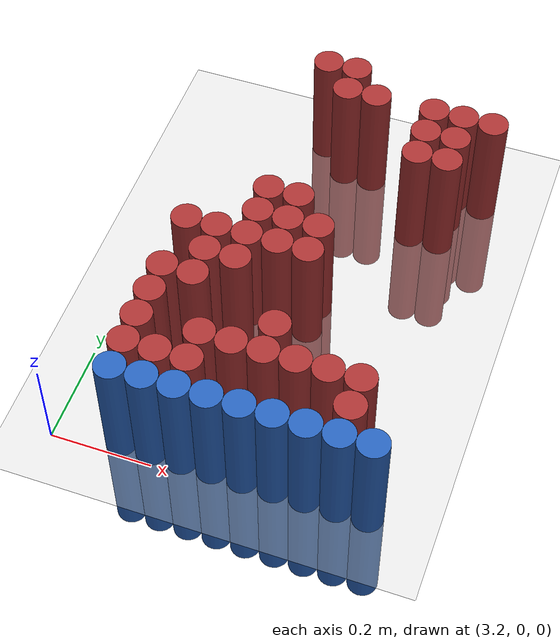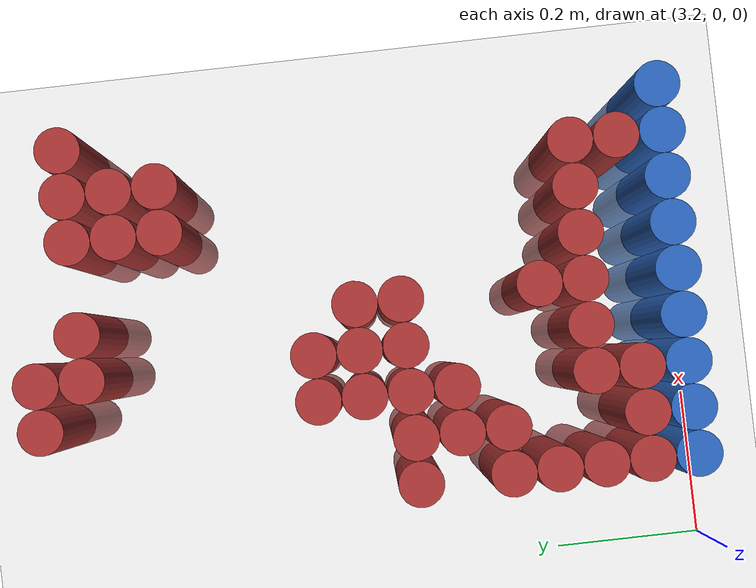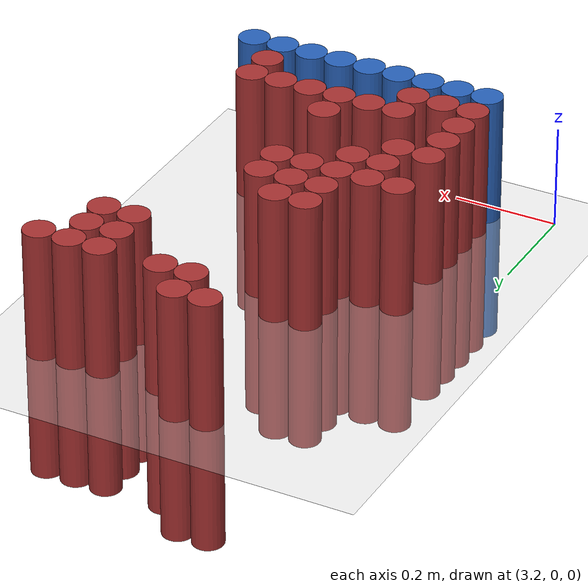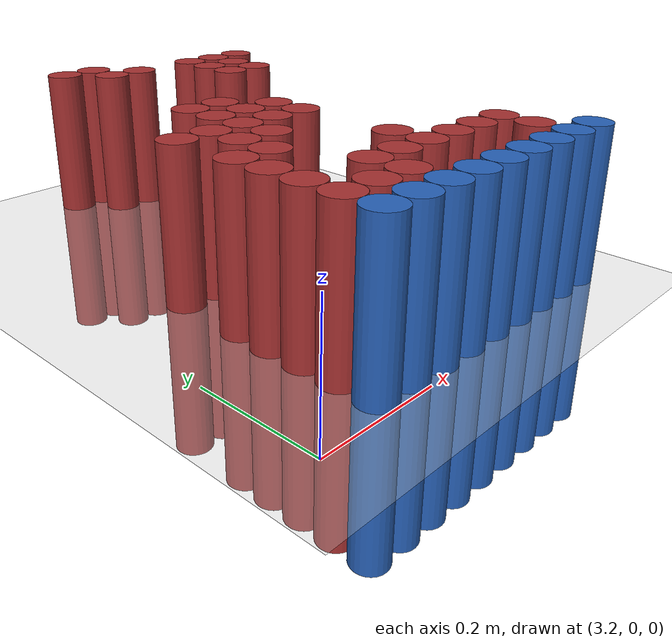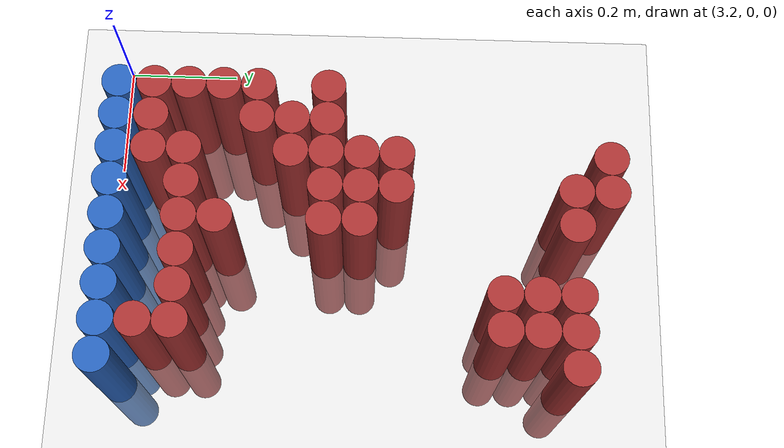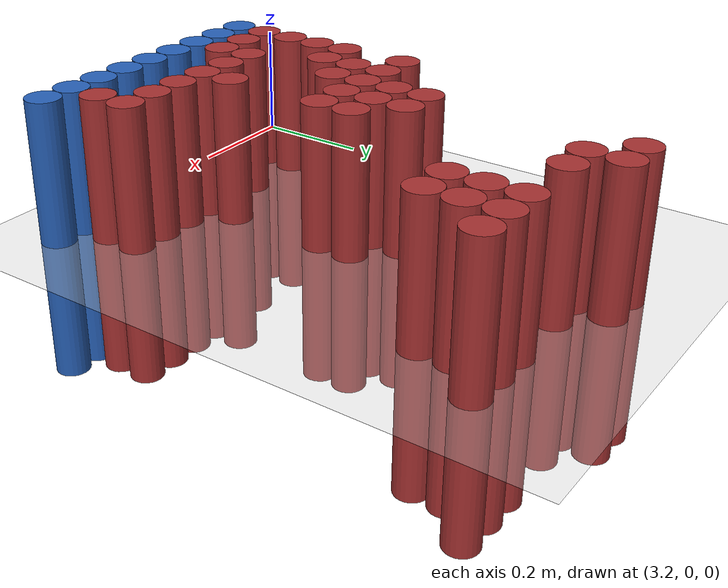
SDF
<sdf version="1.6">
 <world name="default">
  <model name="ground_plane">
   <static>1</static>
   <link name="link">
    <collision name="collision">
     <geometry><plane><normal>0 0 1</normal><size>100 100</size></plane></geometry>
     <surface><friction><ode><mu>100</mu><mu2>50</mu2></ode></friction></surface>
    </collision>
    <visual name="visual">
     <cast_shadows>0</cast_shadows>
     <geometry><plane><normal>0 0 1</normal><size>100 100</size></plane></geometry>
     <material>
      <script><uri>file://media/materials/scripts/gazebo.material</uri><name>Gazebo/Grey</name></script>
     </material>
    </visual>
   </link>
  </model>
  <model name="unit_cylinder_218">
   <static>1</static>
   <pose>3.450000 0.870000 0.000000 0.000000 0.000000 0.000000</pose>
   <link name="link">
    <inertial>
     <mass>1</mass>
     <inertia><ixx>0.145833</ixx><ixy>0</ixy><ixz>0</ixz><iyy>0.145833</iyy><iyz>0</iyz><izz>0.125</izz></inertia>
    </inertial>
    <collision name="collision">
     <geometry><cylinder><radius>0.030000</radius><length>0.5</length></cylinder></geometry>
    </collision>
    <visual name="visual">
     <geometry><cylinder><radius>0.030000</radius><length>0.5</length></cylinder></geometry>
     <material>
      <ambient>0.648000 0.192000 0.192000 1</ambient>
      <diffuse>0.648000 0.192000 0.192000 1</diffuse>
     </material>
     <material>
      <script><name>Gazebo/Grey</name><uri>file://media/materials/scripts/gazebo.material</uri></script>
     </material>
    </visual>
   </link>
  </model>
  <model name="unit_cylinder_219">
   <static>1</static>
   <pose>3.510000 0.870000 0.000000 0.000000 0.000000 0.000000</pose>
   <link name="link">
    <inertial>
     <mass>1</mass>
     <inertia><ixx>0.145833</ixx><ixy>0</ixy><ixz>0</ixz><iyy>0.145833</iyy><iyz>0</iyz><izz>0.125</izz></inertia>
    </inertial>
    <collision name="collision">
     <geometry><cylinder><radius>0.030000</radius><length>0.5</length></cylinder></geometry>
    </collision>
    <visual name="visual">
     <geometry><cylinder><radius>0.030000</radius><length>0.5</length></cylinder></geometry>
     <material>
      <ambient>0.648000 0.192000 0.192000 1</ambient>
      <diffuse>0.648000 0.192000 0.192000 1</diffuse>
     </material>
     <material>
      <script><name>Gazebo/Grey</name><uri>file://media/materials/scripts/gazebo.material</uri></script>
     </material>
    </visual>
   </link>
  </model>
  <model name="unit_cylinder_222">
   <static>1</static>
   <pose>3.510000 0.810000 0.000000 0.000000 0.000000 0.000000</pose>
   <link name="link">
    <inertial>
     <mass>1</mass>
     <inertia><ixx>0.145833</ixx><ixy>0</ixy><ixz>0</ixz><iyy>0.145833</iyy><iyz>0</iyz><izz>0.125</izz></inertia>
    </inertial>
    <collision name="collision">
     <geometry><cylinder><radius>0.030000</radius><length>0.5</length></cylinder></geometry>
    </collision>
    <visual name="visual">
     <geometry><cylinder><radius>0.030000</radius><length>0.5</length></cylinder></geometry>
     <material>
      <ambient>0.648000 0.192000 0.192000 1</ambient>
      <diffuse>0.648000 0.192000 0.192000 1</diffuse>
     </material>
     <material>
      <script><name>Gazebo/Grey</name><uri>file://media/materials/scripts/gazebo.material</uri></script>
     </material>
    </visual>
   </link>
  </model>
  <model name="unit_cylinder_223">
   <static>1</static>
   <pose>3.570000 0.810000 0.000000 0.000000 0.000000 0.000000</pose>
   <link name="link">
    <inertial>
     <mass>1</mass>
     <inertia><ixx>0.145833</ixx><ixy>0</ixy><ixz>0</ixz><iyy>0.145833</iyy><iyz>0</iyz><izz>0.125</izz></inertia>
    </inertial>
    <collision name="collision">
     <geometry><cylinder><radius>0.030000</radius><length>0.5</length></cylinder></geometry>
    </collision>
    <visual name="visual">
     <geometry><cylinder><radius>0.030000</radius><length>0.5</length></cylinder></geometry>
     <material>
      <ambient>0.648000 0.192000 0.192000 1</ambient>
      <diffuse>0.648000 0.192000 0.192000 1</diffuse>
     </material>
     <material>
      <script><name>Gazebo/Grey</name><uri>file://media/materials/scripts/gazebo.material</uri></script>
     </material>
    </visual>
   </link>
  </model>
  <model name="unit_cylinder_224">
   <static>1</static>
   <pose>3.690000 0.810000 0.000000 0.000000 0.000000 0.000000</pose>
   <link name="link">
    <inertial>
     <mass>1</mass>
     <inertia><ixx>0.145833</ixx><ixy>0</ixy><ixz>0</ixz><iyy>0.145833</iyy><iyz>0</iyz><izz>0.125</izz></inertia>
    </inertial>
    <collision name="collision">
     <geometry><cylinder><radius>0.030000</radius><length>0.5</length></cylinder></geometry>
    </collision>
    <visual name="visual">
     <geometry><cylinder><radius>0.030000</radius><length>0.5</length></cylinder></geometry>
     <material>
      <ambient>0.648000 0.192000 0.192000 1</ambient>
      <diffuse>0.648000 0.192000 0.192000 1</diffuse>
     </material>
     <material>
      <script><name>Gazebo/Grey</name><uri>file://media/materials/scripts/gazebo.material</uri></script>
     </material>
    </visual>
   </link>
  </model>
  <model name="unit_cylinder_225">
   <static>1</static>
   <pose>3.750000 0.810000 0.000000 0.000000 0.000000 0.000000</pose>
   <link name="link">
    <inertial>
     <mass>1</mass>
     <inertia><ixx>0.145833</ixx><ixy>0</ixy><ixz>0</ixz><iyy>0.145833</iyy><iyz>0</iyz><izz>0.125</izz></inertia>
    </inertial>
    <collision name="collision">
     <geometry><cylinder><radius>0.030000</radius><length>0.5</length></cylinder></geometry>
    </collision>
    <visual name="visual">
     <geometry><cylinder><radius>0.030000</radius><length>0.5</length></cylinder></geometry>
     <material>
      <ambient>0.648000 0.192000 0.192000 1</ambient>
      <diffuse>0.648000 0.192000 0.192000 1</diffuse>
     </material>
     <material>
      <script><name>Gazebo/Grey</name><uri>file://media/materials/scripts/gazebo.material</uri></script>
     </material>
    </visual>
   </link>
  </model>
  <model name="unit_cylinder_226">
   <static>1</static>
   <pose>3.810000 0.810000 0.000000 0.000000 0.000000 0.000000</pose>
   <link name="link">
    <inertial>
     <mass>1</mass>
     <inertia><ixx>0.145833</ixx><ixy>0</ixy><ixz>0</ixz><iyy>0.145833</iyy><iyz>0</iyz><izz>0.125</izz></inertia>
    </inertial>
    <collision name="collision">
     <geometry><cylinder><radius>0.030000</radius><length>0.5</length></cylinder></geometry>
    </collision>
    <visual name="visual">
     <geometry><cylinder><radius>0.030000</radius><length>0.5</length></cylinder></geometry>
     <material>
      <ambient>0.648000 0.192000 0.192000 1</ambient>
      <diffuse>0.648000 0.192000 0.192000 1</diffuse>
     </material>
     <material>
      <script><name>Gazebo/Grey</name><uri>file://media/materials/scripts/gazebo.material</uri></script>
     </material>
    </visual>
   </link>
  </model>
  <model name="unit_cylinder_227">
   <static>1</static>
   <pose>3.690000 0.750000 0.000000 0.000000 0.000000 0.000000</pose>
   <link name="link">
    <inertial>
     <mass>1</mass>
     <inertia><ixx>0.145833</ixx><ixy>0</ixy><ixz>0</ixz><iyy>0.145833</iyy><iyz>0</iyz><izz>0.125</izz></inertia>
    </inertial>
    <collision name="collision">
     <geometry><cylinder><radius>0.030000</radius><length>0.5</length></cylinder></geometry>
    </collision>
    <visual name="visual">
     <geometry><cylinder><radius>0.030000</radius><length>0.5</length></cylinder></geometry>
     <material>
      <ambient>0.648000 0.192000 0.192000 1</ambient>
      <diffuse>0.648000 0.192000 0.192000 1</diffuse>
     </material>
     <material>
      <script><name>Gazebo/Grey</name><uri>file://media/materials/scripts/gazebo.material</uri></script>
     </material>
    </visual>
   </link>
  </model>
  <model name="unit_cylinder_228">
   <static>1</static>
   <pose>3.750000 0.750000 0.000000 0.000000 0.000000 0.000000</pose>
   <link name="link">
    <inertial>
     <mass>1</mass>
     <inertia><ixx>0.145833</ixx><ixy>0</ixy><ixz>0</ixz><iyy>0.145833</iyy><iyz>0</iyz><izz>0.125</izz></inertia>
    </inertial>
    <collision name="collision">
     <geometry><cylinder><radius>0.030000</radius><length>0.5</length></cylinder></geometry>
    </collision>
    <visual name="visual">
     <geometry><cylinder><radius>0.030000</radius><length>0.5</length></cylinder></geometry>
     <material>
      <ambient>0.648000 0.192000 0.192000 1</ambient>
      <diffuse>0.648000 0.192000 0.192000 1</diffuse>
     </material>
     <material>
      <script><name>Gazebo/Grey</name><uri>file://media/materials/scripts/gazebo.material</uri></script>
     </material>
    </visual>
   </link>
  </model>
  <model name="unit_cylinder_229">
   <static>1</static>
   <pose>3.690000 0.690000 0.000000 0.000000 0.000000 0.000000</pose>
   <link name="link">
    <inertial>
     <mass>1</mass>
     <inertia><ixx>0.145833</ixx><ixy>0</ixy><ixz>0</ixz><iyy>0.145833</iyy><iyz>0</iyz><izz>0.125</izz></inertia>
    </inertial>
    <collision name="collision">
     <geometry><cylinder><radius>0.030000</radius><length>0.5</length></cylinder></geometry>
    </collision>
    <visual name="visual">
     <geometry><cylinder><radius>0.030000</radius><length>0.5</length></cylinder></geometry>
     <material>
      <ambient>0.648000 0.192000 0.192000 1</ambient>
      <diffuse>0.648000 0.192000 0.192000 1</diffuse>
     </material>
     <material>
      <script><name>Gazebo/Grey</name><uri>file://media/materials/scripts/gazebo.material</uri></script>
     </material>
    </visual>
   </link>
  </model>
  <model name="unit_cylinder_230">
   <static>1</static>
   <pose>3.750000 0.690000 0.000000 0.000000 0.000000 0.000000</pose>
   <link name="link">
    <inertial>
     <mass>1</mass>
     <inertia><ixx>0.145833</ixx><ixy>0</ixy><ixz>0</ixz><iyy>0.145833</iyy><iyz>0</iyz><izz>0.125</izz></inertia>
    </inertial>
    <collision name="collision">
     <geometry><cylinder><radius>0.030000</radius><length>0.5</length></cylinder></geometry>
    </collision>
    <visual name="visual">
     <geometry><cylinder><radius>0.030000</radius><length>0.5</length></cylinder></geometry>
     <material>
      <ambient>0.648000 0.192000 0.192000 1</ambient>
      <diffuse>0.648000 0.192000 0.192000 1</diffuse>
     </material>
     <material>
      <script><name>Gazebo/Grey</name><uri>file://media/materials/scripts/gazebo.material</uri></script>
     </material>
    </visual>
   </link>
  </model>
  <model name="unit_cylinder_242">
   <static>1</static>
   <pose>3.450000 0.510000 0.000000 0.000000 0.000000 0.000000</pose>
   <link name="link">
    <inertial>
     <mass>1</mass>
     <inertia><ixx>0.145833</ixx><ixy>0</ixy><ixz>0</ixz><iyy>0.145833</iyy><iyz>0</iyz><izz>0.125</izz></inertia>
    </inertial>
    <collision name="collision">
     <geometry><cylinder><radius>0.030000</radius><length>0.5</length></cylinder></geometry>
    </collision>
    <visual name="visual">
     <geometry><cylinder><radius>0.030000</radius><length>0.5</length></cylinder></geometry>
     <material>
      <ambient>0.648000 0.192000 0.192000 1</ambient>
      <diffuse>0.648000 0.192000 0.192000 1</diffuse>
     </material>
     <material>
      <script><name>Gazebo/Grey</name><uri>file://media/materials/scripts/gazebo.material</uri></script>
     </material>
    </visual>
   </link>
  </model>
  <model name="unit_cylinder_243">
   <static>1</static>
   <pose>3.510000 0.510000 0.000000 0.000000 0.000000 0.000000</pose>
   <link name="link">
    <inertial>
     <mass>1</mass>
     <inertia><ixx>0.145833</ixx><ixy>0</ixy><ixz>0</ixz><iyy>0.145833</iyy><iyz>0</iyz><izz>0.125</izz></inertia>
    </inertial>
    <collision name="collision">
     <geometry><cylinder><radius>0.030000</radius><length>0.5</length></cylinder></geometry>
    </collision>
    <visual name="visual">
     <geometry><cylinder><radius>0.030000</radius><length>0.5</length></cylinder></geometry>
     <material>
      <ambient>0.648000 0.192000 0.192000 1</ambient>
      <diffuse>0.648000 0.192000 0.192000 1</diffuse>
     </material>
     <material>
      <script><name>Gazebo/Grey</name><uri>file://media/materials/scripts/gazebo.material</uri></script>
     </material>
    </visual>
   </link>
  </model>
  <model name="unit_cylinder_249">
   <static>1</static>
   <pose>3.450000 0.450000 0.000000 0.000000 0.000000 0.000000</pose>
   <link name="link">
    <inertial>
     <mass>1</mass>
     <inertia><ixx>0.145833</ixx><ixy>0</ixy><ixz>0</ixz><iyy>0.145833</iyy><iyz>0</iyz><izz>0.125</izz></inertia>
    </inertial>
    <collision name="collision">
     <geometry><cylinder><radius>0.030000</radius><length>0.5</length></cylinder></geometry>
    </collision>
    <visual name="visual">
     <geometry><cylinder><radius>0.030000</radius><length>0.5</length></cylinder></geometry>
     <material>
      <ambient>0.648000 0.192000 0.192000 1</ambient>
      <diffuse>0.648000 0.192000 0.192000 1</diffuse>
     </material>
     <material>
      <script><name>Gazebo/Grey</name><uri>file://media/materials/scripts/gazebo.material</uri></script>
     </material>
    </visual>
   </link>
  </model>
  <model name="unit_cylinder_250">
   <static>1</static>
   <pose>3.510000 0.450000 0.000000 0.000000 0.000000 0.000000</pose>
   <link name="link">
    <inertial>
     <mass>1</mass>
     <inertia><ixx>0.145833</ixx><ixy>0</ixy><ixz>0</ixz><iyy>0.145833</iyy><iyz>0</iyz><izz>0.125</izz></inertia>
    </inertial>
    <collision name="collision">
     <geometry><cylinder><radius>0.030000</radius><length>0.5</length></cylinder></geometry>
    </collision>
    <visual name="visual">
     <geometry><cylinder><radius>0.030000</radius><length>0.5</length></cylinder></geometry>
     <material>
      <ambient>0.648000 0.192000 0.192000 1</ambient>
      <diffuse>0.648000 0.192000 0.192000 1</diffuse>
     </material>
     <material>
      <script><name>Gazebo/Grey</name><uri>file://media/materials/scripts/gazebo.material</uri></script>
     </material>
    </visual>
   </link>
  </model>
  <model name="unit_cylinder_251">
   <static>1</static>
   <pose>3.570000 0.450000 0.000000 0.000000 0.000000 0.000000</pose>
   <link name="link">
    <inertial>
     <mass>1</mass>
     <inertia><ixx>0.145833</ixx><ixy>0</ixy><ixz>0</ixz><iyy>0.145833</iyy><iyz>0</iyz><izz>0.125</izz></inertia>
    </inertial>
    <collision name="collision">
     <geometry><cylinder><radius>0.030000</radius><length>0.5</length></cylinder></geometry>
    </collision>
    <visual name="visual">
     <geometry><cylinder><radius>0.030000</radius><length>0.5</length></cylinder></geometry>
     <material>
      <ambient>0.648000 0.192000 0.192000 1</ambient>
      <diffuse>0.648000 0.192000 0.192000 1</diffuse>
     </material>
     <material>
      <script><name>Gazebo/Grey</name><uri>file://media/materials/scripts/gazebo.material</uri></script>
     </material>
    </visual>
   </link>
  </model>
  <model name="unit_cylinder_254">
   <static>1</static>
   <pose>3.330000 0.390000 0.000000 0.000000 0.000000 0.000000</pose>
   <link name="link">
    <inertial>
     <mass>1</mass>
     <inertia><ixx>0.145833</ixx><ixy>0</ixy><ixz>0</ixz><iyy>0.145833</iyy><iyz>0</iyz><izz>0.125</izz></inertia>
    </inertial>
    <collision name="collision">
     <geometry><cylinder><radius>0.030000</radius><length>0.5</length></cylinder></geometry>
    </collision>
    <visual name="visual">
     <geometry><cylinder><radius>0.030000</radius><length>0.5</length></cylinder></geometry>
     <material>
      <ambient>0.648000 0.192000 0.192000 1</ambient>
      <diffuse>0.648000 0.192000 0.192000 1</diffuse>
     </material>
     <material>
      <script><name>Gazebo/Grey</name><uri>file://media/materials/scripts/gazebo.material</uri></script>
     </material>
    </visual>
   </link>
  </model>
  <model name="unit_cylinder_255">
   <static>1</static>
   <pose>3.390000 0.390000 0.000000 0.000000 0.000000 0.000000</pose>
   <link name="link">
    <inertial>
     <mass>1</mass>
     <inertia><ixx>0.145833</ixx><ixy>0</ixy><ixz>0</ixz><iyy>0.145833</iyy><iyz>0</iyz><izz>0.125</izz></inertia>
    </inertial>
    <collision name="collision">
     <geometry><cylinder><radius>0.030000</radius><length>0.5</length></cylinder></geometry>
    </collision>
    <visual name="visual">
     <geometry><cylinder><radius>0.030000</radius><length>0.5</length></cylinder></geometry>
     <material>
      <ambient>0.648000 0.192000 0.192000 1</ambient>
      <diffuse>0.648000 0.192000 0.192000 1</diffuse>
     </material>
     <material>
      <script><name>Gazebo/Grey</name><uri>file://media/materials/scripts/gazebo.material</uri></script>
     </material>
    </visual>
   </link>
  </model>
  <model name="unit_cylinder_256">
   <static>1</static>
   <pose>3.450000 0.390000 0.000000 0.000000 0.000000 0.000000</pose>
   <link name="link">
    <inertial>
     <mass>1</mass>
     <inertia><ixx>0.145833</ixx><ixy>0</ixy><ixz>0</ixz><iyy>0.145833</iyy><iyz>0</iyz><izz>0.125</izz></inertia>
    </inertial>
    <collision name="collision">
     <geometry><cylinder><radius>0.030000</radius><length>0.5</length></cylinder></geometry>
    </collision>
    <visual name="visual">
     <geometry><cylinder><radius>0.030000</radius><length>0.5</length></cylinder></geometry>
     <material>
      <ambient>0.648000 0.192000 0.192000 1</ambient>
      <diffuse>0.648000 0.192000 0.192000 1</diffuse>
     </material>
     <material>
      <script><name>Gazebo/Grey</name><uri>file://media/materials/scripts/gazebo.material</uri></script>
     </material>
    </visual>
   </link>
  </model>
  <model name="unit_cylinder_257">
   <static>1</static>
   <pose>3.510000 0.390000 0.000000 0.000000 0.000000 0.000000</pose>
   <link name="link">
    <inertial>
     <mass>1</mass>
     <inertia><ixx>0.145833</ixx><ixy>0</ixy><ixz>0</ixz><iyy>0.145833</iyy><iyz>0</iyz><izz>0.125</izz></inertia>
    </inertial>
    <collision name="collision">
     <geometry><cylinder><radius>0.030000</radius><length>0.5</length></cylinder></geometry>
    </collision>
    <visual name="visual">
     <geometry><cylinder><radius>0.030000</radius><length>0.5</length></cylinder></geometry>
     <material>
      <ambient>0.648000 0.192000 0.192000 1</ambient>
      <diffuse>0.648000 0.192000 0.192000 1</diffuse>
     </material>
     <material>
      <script><name>Gazebo/Grey</name><uri>file://media/materials/scripts/gazebo.material</uri></script>
     </material>
    </visual>
   </link>
  </model>
  <model name="unit_cylinder_258">
   <static>1</static>
   <pose>3.570000 0.390000 0.000000 0.000000 0.000000 0.000000</pose>
   <link name="link">
    <inertial>
     <mass>1</mass>
     <inertia><ixx>0.145833</ixx><ixy>0</ixy><ixz>0</ixz><iyy>0.145833</iyy><iyz>0</iyz><izz>0.125</izz></inertia>
    </inertial>
    <collision name="collision">
     <geometry><cylinder><radius>0.030000</radius><length>0.5</length></cylinder></geometry>
    </collision>
    <visual name="visual">
     <geometry><cylinder><radius>0.030000</radius><length>0.5</length></cylinder></geometry>
     <material>
      <ambient>0.648000 0.192000 0.192000 1</ambient>
      <diffuse>0.648000 0.192000 0.192000 1</diffuse>
     </material>
     <material>
      <script><name>Gazebo/Grey</name><uri>file://media/materials/scripts/gazebo.material</uri></script>
     </material>
    </visual>
   </link>
  </model>
  <model name="unit_cylinder_262">
   <static>1</static>
   <pose>3.390000 0.330000 0.000000 0.000000 0.000000 0.000000</pose>
   <link name="link">
    <inertial>
     <mass>1</mass>
     <inertia><ixx>0.145833</ixx><ixy>0</ixy><ixz>0</ixz><iyy>0.145833</iyy><iyz>0</iyz><izz>0.125</izz></inertia>
    </inertial>
    <collision name="collision">
     <geometry><cylinder><radius>0.030000</radius><length>0.5</length></cylinder></geometry>
    </collision>
    <visual name="visual">
     <geometry><cylinder><radius>0.030000</radius><length>0.5</length></cylinder></geometry>
     <material>
      <ambient>0.648000 0.192000 0.192000 1</ambient>
      <diffuse>0.648000 0.192000 0.192000 1</diffuse>
     </material>
     <material>
      <script><name>Gazebo/Grey</name><uri>file://media/materials/scripts/gazebo.material</uri></script>
     </material>
    </visual>
   </link>
  </model>
  <model name="unit_cylinder_263">
   <static>1</static>
   <pose>3.450000 0.330000 0.000000 0.000000 0.000000 0.000000</pose>
   <link name="link">
    <inertial>
     <mass>1</mass>
     <inertia><ixx>0.145833</ixx><ixy>0</ixy><ixz>0</ixz><iyy>0.145833</iyy><iyz>0</iyz><izz>0.125</izz></inertia>
    </inertial>
    <collision name="collision">
     <geometry><cylinder><radius>0.030000</radius><length>0.5</length></cylinder></geometry>
    </collision>
    <visual name="visual">
     <geometry><cylinder><radius>0.030000</radius><length>0.5</length></cylinder></geometry>
     <material>
      <ambient>0.648000 0.192000 0.192000 1</ambient>
      <diffuse>0.648000 0.192000 0.192000 1</diffuse>
     </material>
     <material>
      <script><name>Gazebo/Grey</name><uri>file://media/materials/scripts/gazebo.material</uri></script>
     </material>
    </visual>
   </link>
  </model>
  <model name="unit_cylinder_266">
   <static>1</static>
   <pose>3.330000 0.270000 0.000000 0.000000 0.000000 0.000000</pose>
   <link name="link">
    <inertial>
     <mass>1</mass>
     <inertia><ixx>0.145833</ixx><ixy>0</ixy><ixz>0</ixz><iyy>0.145833</iyy><iyz>0</iyz><izz>0.125</izz></inertia>
    </inertial>
    <collision name="collision">
     <geometry><cylinder><radius>0.030000</radius><length>0.5</length></cylinder></geometry>
    </collision>
    <visual name="visual">
     <geometry><cylinder><radius>0.030000</radius><length>0.5</length></cylinder></geometry>
     <material>
      <ambient>0.648000 0.192000 0.192000 1</ambient>
      <diffuse>0.648000 0.192000 0.192000 1</diffuse>
     </material>
     <material>
      <script><name>Gazebo/Grey</name><uri>file://media/materials/scripts/gazebo.material</uri></script>
     </material>
    </visual>
   </link>
  </model>
  <model name="unit_cylinder_267">
   <static>1</static>
   <pose>3.390000 0.270000 0.000000 0.000000 0.000000 0.000000</pose>
   <link name="link">
    <inertial>
     <mass>1</mass>
     <inertia><ixx>0.145833</ixx><ixy>0</ixy><ixz>0</ixz><iyy>0.145833</iyy><iyz>0</iyz><izz>0.125</izz></inertia>
    </inertial>
    <collision name="collision">
     <geometry><cylinder><radius>0.030000</radius><length>0.5</length></cylinder></geometry>
    </collision>
    <visual name="visual">
     <geometry><cylinder><radius>0.030000</radius><length>0.5</length></cylinder></geometry>
     <material>
      <ambient>0.648000 0.192000 0.192000 1</ambient>
      <diffuse>0.648000 0.192000 0.192000 1</diffuse>
     </material>
     <material>
      <script><name>Gazebo/Grey</name><uri>file://media/materials/scripts/gazebo.material</uri></script>
     </material>
    </visual>
   </link>
  </model>
  <model name="unit_cylinder_272">
   <static>1</static>
   <pose>3.330000 0.210000 0.000000 0.000000 0.000000 0.000000</pose>
   <link name="link">
    <inertial>
     <mass>1</mass>
     <inertia><ixx>0.145833</ixx><ixy>0</ixy><ixz>0</ixz><iyy>0.145833</iyy><iyz>0</iyz><izz>0.125</izz></inertia>
    </inertial>
    <collision name="collision">
     <geometry><cylinder><radius>0.030000</radius><length>0.5</length></cylinder></geometry>
    </collision>
    <visual name="visual">
     <geometry><cylinder><radius>0.030000</radius><length>0.5</length></cylinder></geometry>
     <material>
      <ambient>0.648000 0.192000 0.192000 1</ambient>
      <diffuse>0.648000 0.192000 0.192000 1</diffuse>
     </material>
     <material>
      <script><name>Gazebo/Grey</name><uri>file://media/materials/scripts/gazebo.material</uri></script>
     </material>
    </visual>
   </link>
  </model>
  <model name="unit_cylinder_273">
   <static>1</static>
   <pose>3.570000 0.210000 0.000000 0.000000 0.000000 0.000000</pose>
   <link name="link">
    <inertial>
     <mass>1</mass>
     <inertia><ixx>0.145833</ixx><ixy>0</ixy><ixz>0</ixz><iyy>0.145833</iyy><iyz>0</iyz><izz>0.125</izz></inertia>
    </inertial>
    <collision name="collision">
     <geometry><cylinder><radius>0.030000</radius><length>0.5</length></cylinder></geometry>
    </collision>
    <visual name="visual">
     <geometry><cylinder><radius>0.030000</radius><length>0.5</length></cylinder></geometry>
     <material>
      <ambient>0.648000 0.192000 0.192000 1</ambient>
      <diffuse>0.648000 0.192000 0.192000 1</diffuse>
     </material>
     <material>
      <script><name>Gazebo/Grey</name><uri>file://media/materials/scripts/gazebo.material</uri></script>
     </material>
    </visual>
   </link>
  </model>
  <model name="unit_cylinder_279">
   <static>1</static>
   <pose>3.330000 0.150000 0.000000 0.000000 0.000000 0.000000</pose>
   <link name="link">
    <inertial>
     <mass>1</mass>
     <inertia><ixx>0.145833</ixx><ixy>0</ixy><ixz>0</ixz><iyy>0.145833</iyy><iyz>0</iyz><izz>0.125</izz></inertia>
    </inertial>
    <collision name="collision">
     <geometry><cylinder><radius>0.030000</radius><length>0.5</length></cylinder></geometry>
    </collision>
    <visual name="visual">
     <geometry><cylinder><radius>0.030000</radius><length>0.5</length></cylinder></geometry>
     <material>
      <ambient>0.648000 0.192000 0.192000 1</ambient>
      <diffuse>0.648000 0.192000 0.192000 1</diffuse>
     </material>
     <material>
      <script><name>Gazebo/Grey</name><uri>file://media/materials/scripts/gazebo.material</uri></script>
     </material>
    </visual>
   </link>
  </model>
  <model name="unit_cylinder_280">
   <static>1</static>
   <pose>3.450000 0.150000 0.000000 0.000000 0.000000 0.000000</pose>
   <link name="link">
    <inertial>
     <mass>1</mass>
     <inertia><ixx>0.145833</ixx><ixy>0</ixy><ixz>0</ixz><iyy>0.145833</iyy><iyz>0</iyz><izz>0.125</izz></inertia>
    </inertial>
    <collision name="collision">
     <geometry><cylinder><radius>0.030000</radius><length>0.5</length></cylinder></geometry>
    </collision>
    <visual name="visual">
     <geometry><cylinder><radius>0.030000</radius><length>0.5</length></cylinder></geometry>
     <material>
      <ambient>0.648000 0.192000 0.192000 1</ambient>
      <diffuse>0.648000 0.192000 0.192000 1</diffuse>
     </material>
     <material>
      <script><name>Gazebo/Grey</name><uri>file://media/materials/scripts/gazebo.material</uri></script>
     </material>
    </visual>
   </link>
  </model>
  <model name="unit_cylinder_281">
   <static>1</static>
   <pose>3.510000 0.150000 0.000000 0.000000 0.000000 0.000000</pose>
   <link name="link">
    <inertial>
     <mass>1</mass>
     <inertia><ixx>0.145833</ixx><ixy>0</ixy><ixz>0</ixz><iyy>0.145833</iyy><iyz>0</iyz><izz>0.125</izz></inertia>
    </inertial>
    <collision name="collision">
     <geometry><cylinder><radius>0.030000</radius><length>0.5</length></cylinder></geometry>
    </collision>
    <visual name="visual">
     <geometry><cylinder><radius>0.030000</radius><length>0.5</length></cylinder></geometry>
     <material>
      <ambient>0.648000 0.192000 0.192000 1</ambient>
      <diffuse>0.648000 0.192000 0.192000 1</diffuse>
     </material>
     <material>
      <script><name>Gazebo/Grey</name><uri>file://media/materials/scripts/gazebo.material</uri></script>
     </material>
    </visual>
   </link>
  </model>
  <model name="unit_cylinder_282">
   <static>1</static>
   <pose>3.570000 0.150000 0.000000 0.000000 0.000000 0.000000</pose>
   <link name="link">
    <inertial>
     <mass>1</mass>
     <inertia><ixx>0.145833</ixx><ixy>0</ixy><ixz>0</ixz><iyy>0.145833</iyy><iyz>0</iyz><izz>0.125</izz></inertia>
    </inertial>
    <collision name="collision">
     <geometry><cylinder><radius>0.030000</radius><length>0.5</length></cylinder></geometry>
    </collision>
    <visual name="visual">
     <geometry><cylinder><radius>0.030000</radius><length>0.5</length></cylinder></geometry>
     <material>
      <ambient>0.648000 0.192000 0.192000 1</ambient>
      <diffuse>0.648000 0.192000 0.192000 1</diffuse>
     </material>
     <material>
      <script><name>Gazebo/Grey</name><uri>file://media/materials/scripts/gazebo.material</uri></script>
     </material>
    </visual>
   </link>
  </model>
  <model name="unit_cylinder_283">
   <static>1</static>
   <pose>3.630000 0.150000 0.000000 0.000000 0.000000 0.000000</pose>
   <link name="link">
    <inertial>
     <mass>1</mass>
     <inertia><ixx>0.145833</ixx><ixy>0</ixy><ixz>0</ixz><iyy>0.145833</iyy><iyz>0</iyz><izz>0.125</izz></inertia>
    </inertial>
    <collision name="collision">
     <geometry><cylinder><radius>0.030000</radius><length>0.5</length></cylinder></geometry>
    </collision>
    <visual name="visual">
     <geometry><cylinder><radius>0.030000</radius><length>0.5</length></cylinder></geometry>
     <material>
      <ambient>0.648000 0.192000 0.192000 1</ambient>
      <diffuse>0.648000 0.192000 0.192000 1</diffuse>
     </material>
     <material>
      <script><name>Gazebo/Grey</name><uri>file://media/materials/scripts/gazebo.material</uri></script>
     </material>
    </visual>
   </link>
  </model>
  <model name="unit_cylinder_284">
   <static>1</static>
   <pose>3.690000 0.150000 0.000000 0.000000 0.000000 0.000000</pose>
   <link name="link">
    <inertial>
     <mass>1</mass>
     <inertia><ixx>0.145833</ixx><ixy>0</ixy><ixz>0</ixz><iyy>0.145833</iyy><iyz>0</iyz><izz>0.125</izz></inertia>
    </inertial>
    <collision name="collision">
     <geometry><cylinder><radius>0.030000</radius><length>0.5</length></cylinder></geometry>
    </collision>
    <visual name="visual">
     <geometry><cylinder><radius>0.030000</radius><length>0.5</length></cylinder></geometry>
     <material>
      <ambient>0.648000 0.192000 0.192000 1</ambient>
      <diffuse>0.648000 0.192000 0.192000 1</diffuse>
     </material>
     <material>
      <script><name>Gazebo/Grey</name><uri>file://media/materials/scripts/gazebo.material</uri></script>
     </material>
    </visual>
   </link>
  </model>
  <model name="unit_cylinder_285">
   <static>1</static>
   <pose>3.750000 0.150000 0.000000 0.000000 0.000000 0.000000</pose>
   <link name="link">
    <inertial>
     <mass>1</mass>
     <inertia><ixx>0.145833</ixx><ixy>0</ixy><ixz>0</ixz><iyy>0.145833</iyy><iyz>0</iyz><izz>0.125</izz></inertia>
    </inertial>
    <collision name="collision">
     <geometry><cylinder><radius>0.030000</radius><length>0.5</length></cylinder></geometry>
    </collision>
    <visual name="visual">
     <geometry><cylinder><radius>0.030000</radius><length>0.5</length></cylinder></geometry>
     <material>
      <ambient>0.648000 0.192000 0.192000 1</ambient>
      <diffuse>0.648000 0.192000 0.192000 1</diffuse>
     </material>
     <material>
      <script><name>Gazebo/Grey</name><uri>file://media/materials/scripts/gazebo.material</uri></script>
     </material>
    </visual>
   </link>
  </model>
  <model name="unit_cylinder_297">
   <static>1</static>
   <pose>3.330000 0.090000 0.000000 0.000000 0.000000 0.000000</pose>
   <link name="link">
    <inertial>
     <mass>1</mass>
     <inertia><ixx>0.145833</ixx><ixy>0</ixy><ixz>0</ixz><iyy>0.145833</iyy><iyz>0</iyz><izz>0.125</izz></inertia>
    </inertial>
    <collision name="collision">
     <geometry><cylinder><radius>0.030000</radius><length>0.5</length></cylinder></geometry>
    </collision>
    <visual name="visual">
     <geometry><cylinder><radius>0.030000</radius><length>0.5</length></cylinder></geometry>
     <material>
      <ambient>0.648000 0.192000 0.192000 1</ambient>
      <diffuse>0.648000 0.192000 0.192000 1</diffuse>
     </material>
     <material>
      <script><name>Gazebo/Grey</name><uri>file://media/materials/scripts/gazebo.material</uri></script>
     </material>
    </visual>
   </link>
  </model>
  <model name="unit_cylinder_298">
   <static>1</static>
   <pose>3.390000 0.090000 0.000000 0.000000 0.000000 0.000000</pose>
   <link name="link">
    <inertial>
     <mass>1</mass>
     <inertia><ixx>0.145833</ixx><ixy>0</ixy><ixz>0</ixz><iyy>0.145833</iyy><iyz>0</iyz><izz>0.125</izz></inertia>
    </inertial>
    <collision name="collision">
     <geometry><cylinder><radius>0.030000</radius><length>0.5</length></cylinder></geometry>
    </collision>
    <visual name="visual">
     <geometry><cylinder><radius>0.030000</radius><length>0.5</length></cylinder></geometry>
     <material>
      <ambient>0.648000 0.192000 0.192000 1</ambient>
      <diffuse>0.648000 0.192000 0.192000 1</diffuse>
     </material>
     <material>
      <script><name>Gazebo/Grey</name><uri>file://media/materials/scripts/gazebo.material</uri></script>
     </material>
    </visual>
   </link>
  </model>
  <model name="unit_cylinder_299">
   <static>1</static>
   <pose>3.450000 0.090000 0.000000 0.000000 0.000000 0.000000</pose>
   <link name="link">
    <inertial>
     <mass>1</mass>
     <inertia><ixx>0.145833</ixx><ixy>0</ixy><ixz>0</ixz><iyy>0.145833</iyy><iyz>0</iyz><izz>0.125</izz></inertia>
    </inertial>
    <collision name="collision">
     <geometry><cylinder><radius>0.030000</radius><length>0.5</length></cylinder></geometry>
    </collision>
    <visual name="visual">
     <geometry><cylinder><radius>0.030000</radius><length>0.5</length></cylinder></geometry>
     <material>
      <ambient>0.648000 0.192000 0.192000 1</ambient>
      <diffuse>0.648000 0.192000 0.192000 1</diffuse>
     </material>
     <material>
      <script><name>Gazebo/Grey</name><uri>file://media/materials/scripts/gazebo.material</uri></script>
     </material>
    </visual>
   </link>
  </model>
  <model name="unit_cylinder_300">
   <static>1</static>
   <pose>3.750000 0.090000 0.000000 0.000000 0.000000 0.000000</pose>
   <link name="link">
    <inertial>
     <mass>1</mass>
     <inertia><ixx>0.145833</ixx><ixy>0</ixy><ixz>0</ixz><iyy>0.145833</iyy><iyz>0</iyz><izz>0.125</izz></inertia>
    </inertial>
    <collision name="collision">
     <geometry><cylinder><radius>0.030000</radius><length>0.5</length></cylinder></geometry>
    </collision>
    <visual name="visual">
     <geometry><cylinder><radius>0.030000</radius><length>0.5</length></cylinder></geometry>
     <material>
      <ambient>0.648000 0.192000 0.192000 1</ambient>
      <diffuse>0.648000 0.192000 0.192000 1</diffuse>
     </material>
     <material>
      <script><name>Gazebo/Grey</name><uri>file://media/materials/scripts/gazebo.material</uri></script>
     </material>
    </visual>
   </link>
  </model>
  <model name="unit_cylinder_322">
   <static>1</static>
   <pose>3.330000 0.030000 0.000000 0.000000 0.000000 0.000000</pose>
   <link name="link">
    <inertial>
     <mass>1</mass>
     <inertia><ixx>0.145833</ixx><ixy>0</ixy><ixz>0</ixz><iyy>0.145833</iyy><iyz>0</iyz><izz>0.125</izz></inertia>
    </inertial>
    <collision name="collision">
     <geometry><cylinder><radius>0.030000</radius><length>0.5</length></cylinder></geometry>
    </collision>
    <visual name="visual">
     <geometry><cylinder><radius>0.030000</radius><length>0.5</length></cylinder></geometry>
     <material>
      <ambient>0.152000 0.379000 0.720000 1</ambient>
      <diffuse>0.152000 0.379000 0.720000 1</diffuse>
     </material>
     <material>
      <script><name>Gazebo/Grey</name><uri>file://media/materials/scripts/gazebo.material</uri></script>
     </material>
    </visual>
   </link>
  </model>
  <model name="unit_cylinder_323">
   <static>1</static>
   <pose>3.390000 0.030000 0.000000 0.000000 0.000000 0.000000</pose>
   <link name="link">
    <inertial>
     <mass>1</mass>
     <inertia><ixx>0.145833</ixx><ixy>0</ixy><ixz>0</ixz><iyy>0.145833</iyy><iyz>0</iyz><izz>0.125</izz></inertia>
    </inertial>
    <collision name="collision">
     <geometry><cylinder><radius>0.030000</radius><length>0.5</length></cylinder></geometry>
    </collision>
    <visual name="visual">
     <geometry><cylinder><radius>0.030000</radius><length>0.5</length></cylinder></geometry>
     <material>
      <ambient>0.152000 0.379000 0.720000 1</ambient>
      <diffuse>0.152000 0.379000 0.720000 1</diffuse>
     </material>
     <material>
      <script><name>Gazebo/Grey</name><uri>file://media/materials/scripts/gazebo.material</uri></script>
     </material>
    </visual>
   </link>
  </model>
  <model name="unit_cylinder_324">
   <static>1</static>
   <pose>3.450000 0.030000 0.000000 0.000000 0.000000 0.000000</pose>
   <link name="link">
    <inertial>
     <mass>1</mass>
     <inertia><ixx>0.145833</ixx><ixy>0</ixy><ixz>0</ixz><iyy>0.145833</iyy><iyz>0</iyz><izz>0.125</izz></inertia>
    </inertial>
    <collision name="collision">
     <geometry><cylinder><radius>0.030000</radius><length>0.5</length></cylinder></geometry>
    </collision>
    <visual name="visual">
     <geometry><cylinder><radius>0.030000</radius><length>0.5</length></cylinder></geometry>
     <material>
      <ambient>0.152000 0.379000 0.720000 1</ambient>
      <diffuse>0.152000 0.379000 0.720000 1</diffuse>
     </material>
     <material>
      <script><name>Gazebo/Grey</name><uri>file://media/materials/scripts/gazebo.material</uri></script>
     </material>
    </visual>
   </link>
  </model>
  <model name="unit_cylinder_325">
   <static>1</static>
   <pose>3.510000 0.030000 0.000000 0.000000 0.000000 0.000000</pose>
   <link name="link">
    <inertial>
     <mass>1</mass>
     <inertia><ixx>0.145833</ixx><ixy>0</ixy><ixz>0</ixz><iyy>0.145833</iyy><iyz>0</iyz><izz>0.125</izz></inertia>
    </inertial>
    <collision name="collision">
     <geometry><cylinder><radius>0.030000</radius><length>0.5</length></cylinder></geometry>
    </collision>
    <visual name="visual">
     <geometry><cylinder><radius>0.030000</radius><length>0.5</length></cylinder></geometry>
     <material>
      <ambient>0.152000 0.379000 0.720000 1</ambient>
      <diffuse>0.152000 0.379000 0.720000 1</diffuse>
     </material>
     <material>
      <script><name>Gazebo/Grey</name><uri>file://media/materials/scripts/gazebo.material</uri></script>
     </material>
    </visual>
   </link>
  </model>
  <model name="unit_cylinder_326">
   <static>1</static>
   <pose>3.570000 0.030000 0.000000 0.000000 0.000000 0.000000</pose>
   <link name="link">
    <inertial>
     <mass>1</mass>
     <inertia><ixx>0.145833</ixx><ixy>0</ixy><ixz>0</ixz><iyy>0.145833</iyy><iyz>0</iyz><izz>0.125</izz></inertia>
    </inertial>
    <collision name="collision">
     <geometry><cylinder><radius>0.030000</radius><length>0.5</length></cylinder></geometry>
    </collision>
    <visual name="visual">
     <geometry><cylinder><radius>0.030000</radius><length>0.5</length></cylinder></geometry>
     <material>
      <ambient>0.152000 0.379000 0.720000 1</ambient>
      <diffuse>0.152000 0.379000 0.720000 1</diffuse>
     </material>
     <material>
      <script><name>Gazebo/Grey</name><uri>file://media/materials/scripts/gazebo.material</uri></script>
     </material>
    </visual>
   </link>
  </model>
  <model name="unit_cylinder_327">
   <static>1</static>
   <pose>3.630000 0.030000 0.000000 0.000000 0.000000 0.000000</pose>
   <link name="link">
    <inertial>
     <mass>1</mass>
     <inertia><ixx>0.145833</ixx><ixy>0</ixy><ixz>0</ixz><iyy>0.145833</iyy><iyz>0</iyz><izz>0.125</izz></inertia>
    </inertial>
    <collision name="collision">
     <geometry><cylinder><radius>0.030000</radius><length>0.5</length></cylinder></geometry>
    </collision>
    <visual name="visual">
     <geometry><cylinder><radius>0.030000</radius><length>0.5</length></cylinder></geometry>
     <material>
      <ambient>0.152000 0.379000 0.720000 1</ambient>
      <diffuse>0.152000 0.379000 0.720000 1</diffuse>
     </material>
     <material>
      <script><name>Gazebo/Grey</name><uri>file://media/materials/scripts/gazebo.material</uri></script>
     </material>
    </visual>
   </link>
  </model>
  <model name="unit_cylinder_328">
   <static>1</static>
   <pose>3.690000 0.030000 0.000000 0.000000 0.000000 0.000000</pose>
   <link name="link">
    <inertial>
     <mass>1</mass>
     <inertia><ixx>0.145833</ixx><ixy>0</ixy><ixz>0</ixz><iyy>0.145833</iyy><iyz>0</iyz><izz>0.125</izz></inertia>
    </inertial>
    <collision name="collision">
     <geometry><cylinder><radius>0.030000</radius><length>0.5</length></cylinder></geometry>
    </collision>
    <visual name="visual">
     <geometry><cylinder><radius>0.030000</radius><length>0.5</length></cylinder></geometry>
     <material>
      <ambient>0.152000 0.379000 0.720000 1</ambient>
      <diffuse>0.152000 0.379000 0.720000 1</diffuse>
     </material>
     <material>
      <script><name>Gazebo/Grey</name><uri>file://media/materials/scripts/gazebo.material</uri></script>
     </material>
    </visual>
   </link>
  </model>
  <model name="unit_cylinder_329">
   <static>1</static>
   <pose>3.750000 0.030000 0.000000 0.000000 0.000000 0.000000</pose>
   <link name="link">
    <inertial>
     <mass>1</mass>
     <inertia><ixx>0.145833</ixx><ixy>0</ixy><ixz>0</ixz><iyy>0.145833</iyy><iyz>0</iyz><izz>0.125</izz></inertia>
    </inertial>
    <collision name="collision">
     <geometry><cylinder><radius>0.030000</radius><length>0.5</length></cylinder></geometry>
    </collision>
    <visual name="visual">
     <geometry><cylinder><radius>0.030000</radius><length>0.5</length></cylinder></geometry>
     <material>
      <ambient>0.152000 0.379000 0.720000 1</ambient>
      <diffuse>0.152000 0.379000 0.720000 1</diffuse>
     </material>
     <material>
      <script><name>Gazebo/Grey</name><uri>file://media/materials/scripts/gazebo.material</uri></script>
     </material>
    </visual>
   </link>
  </model>
  <model name="unit_cylinder_330">
   <static>1</static>
   <pose>3.810000 0.030000 0.000000 0.000000 0.000000 0.000000</pose>
   <link name="link">
    <inertial>
     <mass>1</mass>
     <inertia><ixx>0.145833</ixx><ixy>0</ixy><ixz>0</ixz><iyy>0.145833</iyy><iyz>0</iyz><izz>0.125</izz></inertia>
    </inertial>
    <collision name="collision">
     <geometry><cylinder><radius>0.030000</radius><length>0.5</length></cylinder></geometry>
    </collision>
    <visual name="visual">
     <geometry><cylinder><radius>0.030000</radius><length>0.5</length></cylinder></geometry>
     <material>
      <ambient>0.152000 0.379000 0.720000 1</ambient>
      <diffuse>0.152000 0.379000 0.720000 1</diffuse>
     </material>
     <material>
      <script><name>Gazebo/Grey</name><uri>file://media/materials/scripts/gazebo.material</uri></script>
     </material>
    </visual>
   </link>
  </model>
 </world>
</sdf>
